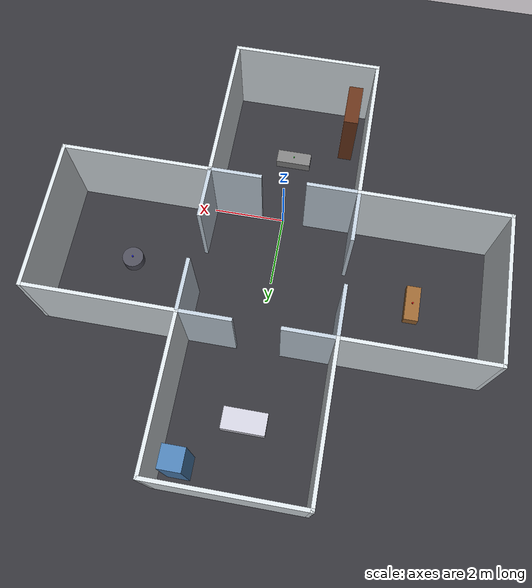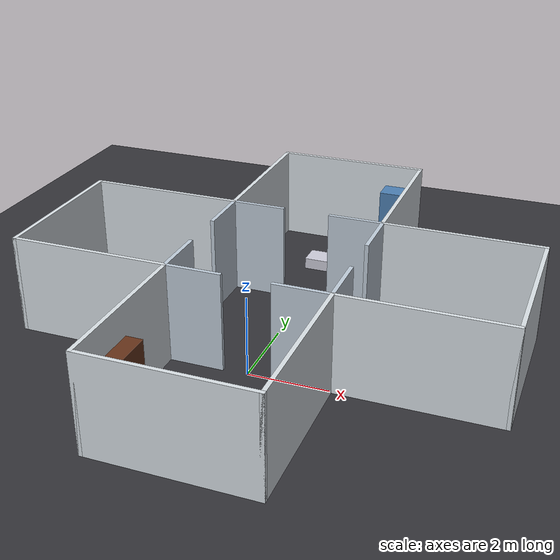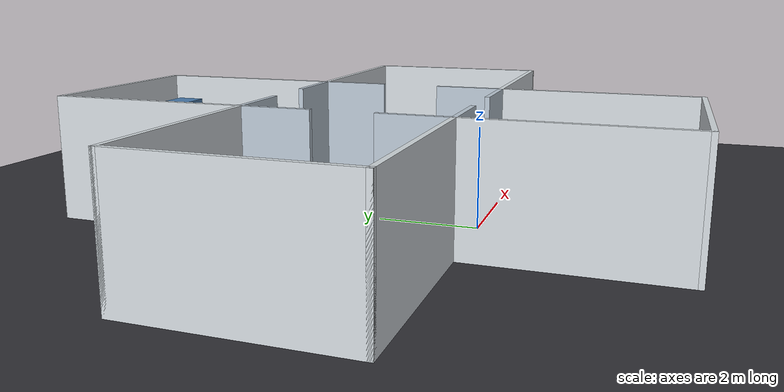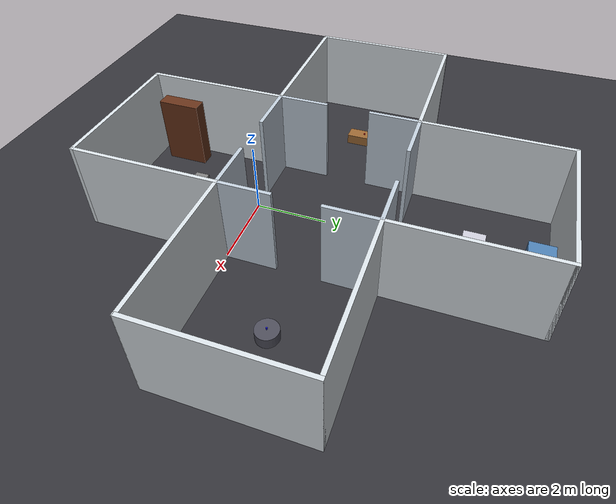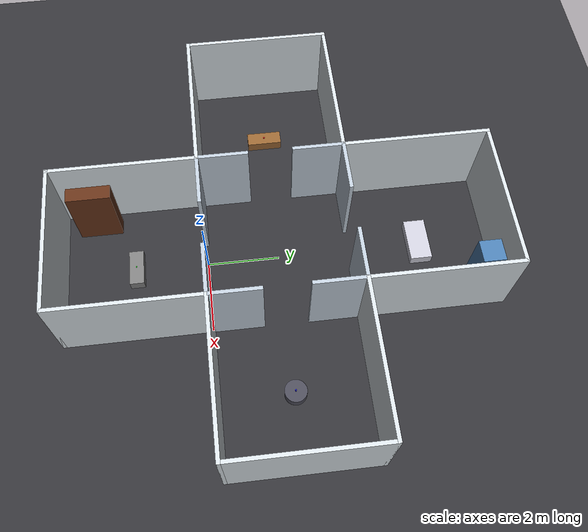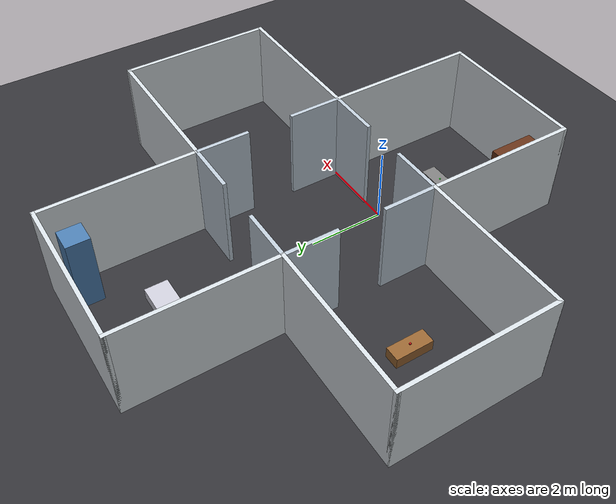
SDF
<?xml version="1.0"?>
<sdf version="1.9">
  <world name="mobile_manipulation_world">
    <plugin filename="gz-sim-physics-system" name="gz::sim::systems::Physics"/>
    <plugin filename="gz-sim-sensors-system" name="gz::sim::systems::Sensors">
      <render_engine>ogre2</render_engine>
    </plugin>
    <plugin filename="gz-sim-scene-broadcaster-system" name="gz::sim::systems::SceneBroadcaster"/>
    <plugin filename="gz-sim-user-commands-system" name="gz::sim::systems::UserCommands"/>
    <plugin filename="gz-sim-contact-system" name="gz::sim::systems::Contact"/>

    <scene>
      <ambient>0.6 0.6 0.6 1.0</ambient>
      <background>0.3 0.4 0.5 1.0</background>
    </scene>

    <light type="directional" name="sun">
      <cast_shadows>true</cast_shadows>
      <pose>0 0 10 0 0 0</pose>
      <diffuse>0.9 0.9 0.9 1</diffuse>
      <specular>0.3 0.3 0.3 1</specular>
      <direction>-0.5 0.2 -0.9</direction>
    </light>

    <!-- ===================== GROUND PLANE ===================== -->
    <model name="ground_plane">
      <static>true</static>
      <link name="link">
        <collision name="collision">
          <geometry><plane><normal>0 0 1</normal><size>30 30</size></plane></geometry>
        </collision>
        <visual name="visual">
          <geometry><plane><normal>0 0 1</normal><size>30 30</size></plane></geometry>
          <material>
            <ambient>0.2 0.2 0.22 1</ambient>
            <diffuse>0.2 0.2 0.22 1</diffuse>
          </material>
        </visual>
      </link>
    </model>

    <!-- ===================== OUTER WALLS ===================== -->
    <model name="wall_south">
      <static>true</static><pose>0 -4 1.25 0 0 0</pose>
      <link name="link">
        <collision name="collision"><geometry><box><size>4.1 0.1 2.5</size></box></geometry></collision>
        <visual name="visual"><geometry><box><size>4.1 0.1 2.5</size></box></geometry><material><ambient>0.85 0.88 0.9 1</ambient><diffuse>0.85 0.88 0.9 1</diffuse></material></visual>
      </link>
    </model>

    <model name="wall_south_left_wing">
      <static>true</static><pose>-4 0 1.25 0 0 0</pose>
      <link name="link">
        <collision name="collision"><geometry><box><size>4.1 0.1 2.5</size></box></geometry></collision>
        <visual name="visual"><geometry><box><size>4.1 0.1 2.5</size></box></geometry><material><ambient>0.85 0.88 0.9 1</ambient><diffuse>0.85 0.88 0.9 1</diffuse></material></visual>
      </link>
    </model>

    <model name="wall_south_right_wing">
      <static>true</static><pose>4 0 1.25 0 0 0</pose>
      <link name="link">
        <collision name="collision"><geometry><box><size>4.1 0.1 2.5</size></box></geometry></collision>
        <visual name="visual"><geometry><box><size>4.1 0.1 2.5</size></box></geometry><material><ambient>0.85 0.88 0.9 1</ambient><diffuse>0.85 0.88 0.9 1</diffuse></material></visual>
      </link>
    </model>

    <model name="wall_west_upper">
      <static>true</static><pose>-6 2 1.25 0 0 0</pose>
      <link name="link">
        <collision name="collision"><geometry><box><size>0.1 4.1 2.5</size></box></geometry></collision>
        <visual name="visual"><geometry><box><size>0.1 4.1 2.5</size></box></geometry><material><ambient>0.85 0.88 0.9 1</ambient><diffuse>0.85 0.88 0.9 1</diffuse></material></visual>
      </link>
    </model>

    <model name="wall_east_upper">
      <static>true</static><pose>6 2 1.25 0 0 0</pose>
      <link name="link">
        <collision name="collision"><geometry><box><size>0.1 4.1 2.5</size></box></geometry></collision>
        <visual name="visual"><geometry><box><size>0.1 4.1 2.5</size></box></geometry><material><ambient>0.85 0.88 0.9 1</ambient><diffuse>0.85 0.88 0.9 1</diffuse></material></visual>
      </link>
    </model>

    <model name="wall_west_lower">
      <static>true</static><pose>-2 -2 1.25 0 0 0</pose>
      <link name="link">
        <collision name="collision"><geometry><box><size>0.1 4.1 2.5</size></box></geometry></collision>
        <visual name="visual"><geometry><box><size>0.1 4.1 2.5</size></box></geometry><material><ambient>0.85 0.88 0.9 1</ambient><diffuse>0.85 0.88 0.9 1</diffuse></material></visual>
      </link>
    </model>

    <model name="wall_east_lower">
      <static>true</static><pose>2 -2 1.25 0 0 0</pose>
      <link name="link">
        <collision name="collision"><geometry><box><size>0.1 4.1 2.5</size></box></geometry></collision>
        <visual name="visual"><geometry><box><size>0.1 4.1 2.5</size></box></geometry><material><ambient>0.85 0.88 0.9 1</ambient><diffuse>0.85 0.88 0.9 1</diffuse></material></visual>
      </link>
    </model>

    <model name="wall_west_top">
      <static>true</static><pose>-2 6 1.25 0 0 0</pose>
      <link name="link">
        <collision name="collision"><geometry><box><size>0.1 4.1 2.5</size></box></geometry></collision>
        <visual name="visual"><geometry><box><size>0.1 4.1 2.5</size></box></geometry><material><ambient>0.85 0.88 0.9 1</ambient><diffuse>0.85 0.88 0.9 1</diffuse></material></visual>
      </link>
    </model>

    <model name="wall_east_top">
      <static>true</static><pose>2 6 1.25 0 0 0</pose>
      <link name="link">
        <collision name="collision"><geometry><box><size>0.1 4.1 2.5</size></box></geometry></collision>
        <visual name="visual"><geometry><box><size>0.1 4.1 2.5</size></box></geometry><material><ambient>0.85 0.88 0.9 1</ambient><diffuse>0.85 0.88 0.9 1</diffuse></material></visual>
      </link>
    </model>

    <model name="wall_north_top">
      <static>true</static><pose>0 8 1.25 0 0 0</pose>
      <link name="link">
        <collision name="collision"><geometry><box><size>4.1 0.1 2.5</size></box></geometry></collision>
        <visual name="visual"><geometry><box><size>4.1 0.1 2.5</size></box></geometry><material><ambient>0.85 0.88 0.9 1</ambient><diffuse>0.85 0.88 0.9 1</diffuse></material></visual>
      </link>
    </model>

    <!-- ===================== INNER WALLS & DOORWAYS ===================== -->
    <model name="wall_north_left_wing">
      <static>true</static><pose>-4 4 1.25 0 0 0</pose>
      <link name="link"><collision name="collision"><geometry><box><size>4.1 0.1 2.5</size></box></geometry></collision><visual name="visual"><geometry><box><size>4.1 0.1 2.5</size></box></geometry><material><ambient>0.85 0.88 0.9 1</ambient><diffuse>0.85 0.88 0.9 1</diffuse></material></visual></link>
    </model>

    <model name="wall_north_right_wing">
      <static>true</static><pose>4 4 1.25 0 0 0</pose>
      <link name="link"><collision name="collision"><geometry><box><size>4.1 0.1 2.5</size></box></geometry></collision><visual name="visual"><geometry><box><size>4.1 0.1 2.5</size></box></geometry><material><ambient>0.85 0.88 0.9 1</ambient><diffuse>0.85 0.88 0.9 1</diffuse></material></visual></link>
    </model>

    <model name="wall_door_north_left">
      <static>true</static><pose>-1.3 4 1.25 0 0 0</pose>
      <link name="link"><collision name="collision"><geometry><box><size>1.4 0.1 2.5</size></box></geometry></collision><visual name="visual"><geometry><box><size>1.4 0.1 2.5</size></box></geometry><material><ambient>0.75 0.8 0.85 1</ambient><diffuse>0.75 0.8 0.85 1</diffuse></material></visual></link>
    </model>

    <model name="wall_door_north_right">
      <static>true</static><pose>1.3 4 1.25 0 0 0</pose>
      <link name="link"><collision name="collision"><geometry><box><size>1.4 0.1 2.5</size></box></geometry></collision><visual name="visual"><geometry><box><size>1.4 0.1 2.5</size></box></geometry><material><ambient>0.75 0.8 0.85 1</ambient><diffuse>0.75 0.8 0.85 1</diffuse></material></visual></link>
    </model>

    <model name="wall_door_left_bottom">
      <static>true</static><pose>-2 0.7 1.25 0 0 0</pose>
      <link name="link"><collision name="collision"><geometry><box><size>0.1 1.4 2.5</size></box></geometry></collision><visual name="visual"><geometry><box><size>0.1 1.4 2.5</size></box></geometry><material><ambient>0.75 0.8 0.85 1</ambient><diffuse>0.75 0.8 0.85 1</diffuse></material></visual></link>
    </model>

    <model name="wall_door_left_top">
      <static>true</static><pose>-2 3.3 1.25 0 0 0</pose>
      <link name="link"><collision name="collision"><geometry><box><size>0.1 1.4 2.5</size></box></geometry></collision><visual name="visual"><geometry><box><size>0.1 1.4 2.5</size></box></geometry><material><ambient>0.75 0.8 0.85 1</ambient><diffuse>0.75 0.8 0.85 1</diffuse></material></visual></link>
    </model>

    <model name="wall_door_right_bottom">
      <static>true</static><pose>2 0.7 1.25 0 0 0</pose>
      <link name="link"><collision name="collision"><geometry><box><size>0.1 1.4 2.5</size></box></geometry></collision><visual name="visual"><geometry><box><size>0.1 1.4 2.5</size></box></geometry><material><ambient>0.75 0.8 0.85 1</ambient><diffuse>0.75 0.8 0.85 1</diffuse></material></visual></link>
    </model>

    <model name="wall_door_right_top">
      <static>true</static><pose>2 3.3 1.25 0 0 0</pose>
      <link name="link"><collision name="collision"><geometry><box><size>0.1 1.4 2.5</size></box></geometry></collision><visual name="visual"><geometry><box><size>0.1 1.4 2.5</size></box></geometry><material><ambient>0.75 0.8 0.85 1</ambient><diffuse>0.75 0.8 0.85 1</diffuse></material></visual></link>
    </model>

    <model name="wall_door_center_left">
      <static>true</static><pose>-1.3 0 1.25 0 0 0</pose>
      <link name="link"><collision name="collision"><geometry><box><size>1.4 0.1 2.5</size></box></geometry></collision><visual name="visual"><geometry><box><size>1.4 0.1 2.5</size></box></geometry><material><ambient>0.75 0.8 0.85 1</ambient><diffuse>0.75 0.8 0.85 1</diffuse></material></visual></link>
    </model>

    <model name="wall_door_center_right">
      <static>true</static><pose>1.3 0 1.25 0 0 0</pose>
      <link name="link"><collision name="collision"><geometry><box><size>1.4 0.1 2.5</size></box></geometry></collision><visual name="visual"><geometry><box><size>1.4 0.1 2.5</size></box></geometry><material><ambient>0.75 0.8 0.85 1</ambient><diffuse>0.75 0.8 0.85 1</diffuse></material></visual></link>
    </model>

    <!-- ===================== ASYMMETRIC FURNITURE ===================== -->

    <!-- Fourth Room Drop-off Table -->
    <model name="table_top_dropoff">
      <static>true</static>
      <pose>0 6 0.15 0 0 0</pose>
      <link name="link">
        <collision name="collision"><geometry><box><size>1.2 0.6 0.3</size></box></geometry></collision>
        <visual name="visual"><geometry><box><size>1.2 0.6 0.3</size></box></geometry><material><ambient>0.8 0.8 0.85 1</ambient><diffuse>0.8 0.8 0.85 1</diffuse></material></visual>
      </link>
    </model>

    <!-- NEW: Fourth Room Tall Cabinet (Breaks Symmetry) -->
    <model name="cabinet_top_room">
      <static>true</static>
      <pose>1.4 7.4 1.0 0 0 0</pose>
      <link name="link">
        <collision name="collision"><geometry><box><size>0.6 0.6 2.0</size></box></geometry></collision>
        <visual name="visual"><geometry><box><size>0.6 0.6 2.0</size></box></geometry><material><ambient>0.3 0.5 0.7 1</ambient><diffuse>0.3 0.5 0.7 1</diffuse></material></visual>
      </link>
    </model>

    <!-- Left Room: Shallow Rectangular Table -->
    <model name="table_left">
      <static>true</static>
      <pose>-4 2 0.15 0 0 0</pose>
      <link name="link">
        <collision name="collision"><geometry><box><size>0.4 1.0 0.3</size></box></geometry></collision>
        <visual name="visual"><geometry><box><size>0.4 1.0 0.3</size></box></geometry><material><ambient>0.6 0.4 0.2 1</ambient><diffuse>0.6 0.4 0.2 1</diffuse></material></visual>
      </link>
    </model>

    <!-- Right Room: Smaller Cylindrical Table -->
    <model name="table_right_cylinder">
      <static>true</static>
      <pose>4 2 0.15 0 0 0</pose>
      <link name="link">
        <collision name="collision"><geometry><cylinder><radius>0.3</radius><length>0.3</length></cylinder></geometry></collision>
        <visual name="visual"><geometry><cylinder><radius>0.3</radius><length>0.3</length></cylinder></geometry><material><ambient>0.3 0.3 0.35 1</ambient><diffuse>0.3 0.3 0.35 1</diffuse></material></visual>
      </link>
    </model>

    <!-- Bottom Room: Shallow Table -->
    <model name="table_bottom">
      <static>true</static>
      <pose>0 -2 0.15 0 0 0</pose>
      <link name="link">
        <collision name="collision"><geometry><box><size>1.0 0.4 0.3</size></box></geometry></collision>
        <visual name="visual"><geometry><box><size>1.0 0.4 0.3</size></box></geometry><material><ambient>0.5 0.5 0.5 1</ambient><diffuse>0.5 0.5 0.5 1</diffuse></material></visual>
      </link>
    </model>

    <!-- Bottom Room Bookshelf Obstacle -->
    <model name="bookshelf_bottom">
      <static>true</static>
      <pose>-1.5 -3 1.0 0 0 0</pose>
      <link name="link">
        <collision name="collision"><geometry><box><size>0.4 1.2 2.0</size></box></geometry></collision>
        <visual name="visual"><geometry><box><size>0.4 1.2 2.0</size></box></geometry><material><ambient>0.4 0.2 0.1 1</ambient><diffuse>0.4 0.2 0.1 1</diffuse></material></visual>
      </link>
    </model>

    <!-- ===================== DYNAMIC PICK AND PLACE TARGETS ===================== -->

    <!-- Target 1: 4cm Red Cube -->
    <model name="target_red_cube">
      <static>false</static>
      <pose>-4 2 0.32 0 0 0</pose>
      <link name="link">
        <inertial>
          <mass>0.05</mass>
          <inertia><ixx>0.00001</ixx><iyy>0.00001</iyy><izz>0.00001</izz></inertia>
        </inertial>
        <collision name="collision"><geometry><box><size>0.04 0.04 0.04</size></box></geometry></collision>
        <visual name="visual"><geometry><box><size>0.04 0.04 0.04</size></box></geometry><material><ambient>0.9 0.1 0.1 1</ambient><diffuse>0.9 0.1 0.1 1</diffuse></material></visual>
      </link>
    </model>

    <!-- Target 2: 4cm Diameter Blue Cylinder -->
    <model name="target_blue_cylinder">
      <static>false</static>
      <pose>4 2 0.33 0 0 0</pose>
      <link name="link">
        <inertial>
          <mass>0.05</mass>
          <inertia><ixx>0.00001</ixx><iyy>0.00001</iyy><izz>0.00001</izz></inertia>
        </inertial>
        <collision name="collision"><geometry><cylinder><radius>0.02</radius><length>0.06</length></cylinder></geometry></collision>
        <visual name="visual"><geometry><cylinder><radius>0.02</radius><length>0.06</length></cylinder></geometry><material><ambient>0.1 0.1 0.9 1</ambient><diffuse>0.1 0.1 0.9 1</diffuse></material></visual>
      </link>
    </model>

    <!-- Target 3: 4cm Diameter Green Sphere -->
    <model name="target_green_sphere">
      <static>false</static>
      <pose>0 -2 0.32 0 0 0</pose>
      <link name="link">
        <inertial>
          <mass>0.05</mass>
          <inertia><ixx>0.00001</ixx><iyy>0.00001</iyy><izz>0.00001</izz></inertia>
        </inertial>
        <collision name="collision"><geometry><sphere><radius>0.02</radius></sphere></geometry></collision>
        <visual name="visual"><geometry><sphere><radius>0.02</radius></sphere></geometry><material><ambient>0.1 0.9 0.1 1</ambient><diffuse>0.1 0.9 0.1 1</diffuse></material></visual>
      </link>
    </model>
  </world>
</sdf>
